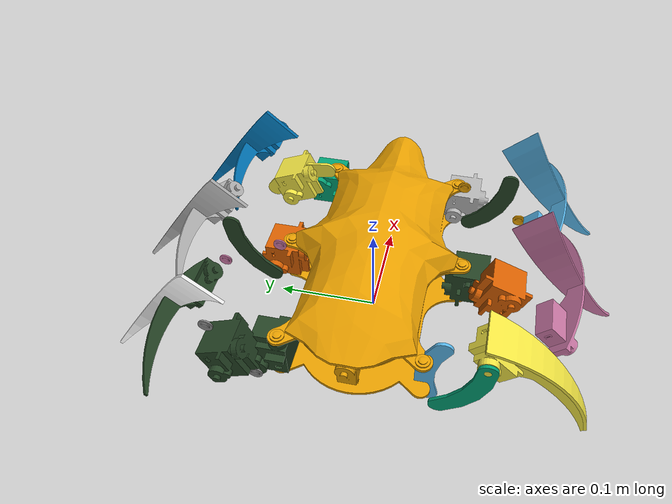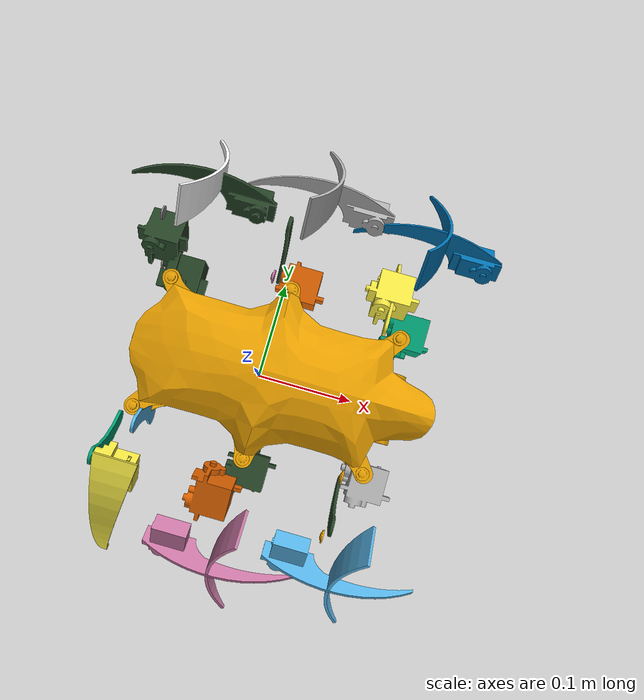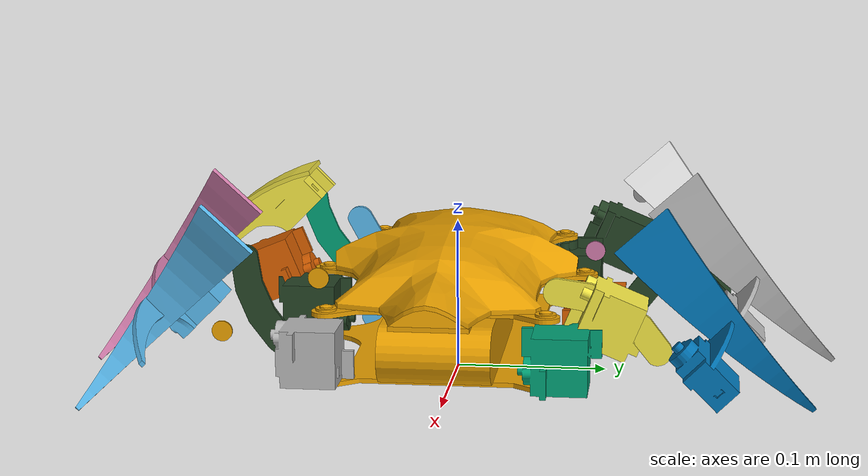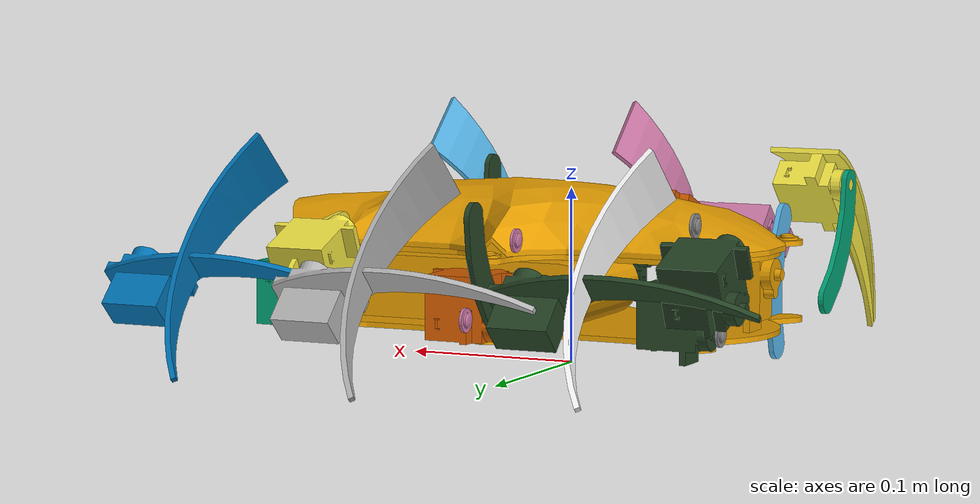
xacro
<?xml version="1.0"?>
<robot xmlns:xacro="http://www.ros.org/wiki/xacro" name="ant_robot">
    <link name="robot_base">
        <inertial>
            <origin rpy="-3.141593 3.141593 -3.141593" xyz="0.000000 0.000000 0.046800" />
            <inertia izz="0.010957344003465" iyy="0.0094274309535225" ixz="0.0" ixy="0.0" ixx="0.0022800739177674" iyz="0.0" />
            <mass value="0.5" />
        </inertial>
        <collision name="Ant">
            <origin xyz="0.000000 0.000000 0.046800" rpy="-3.141593 3.141593 -3.141593" />
            <geometry>
                <box size="0.245635 0.112682 0.050000" />
            </geometry>
        </collision>
        <visual name="bodyTextured">
            <origin xyz="0.025649 -0.000000 0.063289" rpy="1.570796 3.141593 -3.141593" />
            <geometry>
                <mesh filename="package://ant_description/meshes/stl/ant_bodyTextured_vis_1.stl" />
            </geometry>
        </visual>
        <visual name="body">
            <origin xyz="0.016722 -0.000000 0.048790" rpy="1.570796 3.141593 -3.141593" />
            <geometry>
                <mesh filename="package://ant_description/meshes/stl/ant_body_vis_1.stl" />
            </geometry>
        </visual>
        <visual name="body">
            <origin xyz="0.016722 -0.000000 0.048790" rpy="1.570796 3.141593 -3.141593" />
            <geometry>
                <mesh filename="package://ant_description/meshes/stl/ant_body_vis_2.stl" />
            </geometry>
        </visual>
    </link>

    <joint type="continuous" name="joint1Leg">
        <axis xyz="0 0 1" />
        <parent link="robot_base" />
        <child link="link1RespondableLeg" />
        <origin xyz="-0.105981 -0.065481 0.052616" rpy="-3.141593 3.141593 -3.141593" />
    </joint>
    <link name="link1RespondableLeg">
        <inertial>
            <origin rpy="-1.570796 -1.570796 0.000000" xyz="0.008250 -0.009000 -0.010575" />
            <inertia izz="0.00031086051841823" iyy="0.00032467001214758" ixz="0.0" ixy="0.0" ixx="0.00032467001214758" iyz="0.0" />
            <mass value="0.10000000149012" />
        </inertial>
        <collision name="link1RespondableLeg">
            <origin xyz="0.008250 -0.009000 -0.010575" rpy="-1.570796 -1.570796 0.000000" />
            <geometry>
                <box size="0.034500 0.034500 0.036000" />
            </geometry>
        </collision>
        <visual name="link1Leg">
            <origin xyz="0.007125 -0.009000 -0.009450" rpy="1.570796 3.141593 3.141592" />
            <geometry>
                <mesh filename="package://ant_description/meshes/stl/ant_link1Leg_vis_1.stl" />
            </geometry>
        </visual>
    </link>
    <joint type="continuous" name="joint2Leg">
        <axis xyz="0 0 1" />
        <parent link="link1RespondableLeg" />
        <child link="link2RespondableLeg" />
        <origin xyz="-0.005325 -0.018000 -0.018825" rpy="0.000000 1.570796 0.000000" />
    </joint>
    <link name="link2RespondableLeg">
        <inertial>
            <origin rpy="2.660233 1.570800 -0.350445" xyz="-0.029710 -0.022557 -0.011925" />
            <inertia izz="6.393814813824e-05" iyy="0.00027021820578771" ixz="0.0" ixy="0.0" ixx="0.00033342523110201" iyz="-0.00010482141909481" />
            <mass value="0.10000000149012" />
        </inertial>
        <collision name="link2RespondableLeg">
            <origin xyz="-0.019013 -0.020420 -0.011925" rpy="2.920760 1.570808 0.425105" />
            <geometry>
                <box size="0.003000 0.018521 0.021172" />
            </geometry>
        </collision>
        <collision name="link2RespondableLeg">
            <origin xyz="-0.056947 -0.035393 -0.011925" rpy="2.745173 1.570801 -0.265505" />
            <geometry>
                <box size="0.003000 0.017720 0.028921" />
            </geometry>
        </collision>
        <collision name="link2RespondableLeg">
            <origin xyz="-0.035254 -0.029795 -0.011925" rpy="-1.791009 1.570800 1.751686" />
            <geometry>
                <box size="0.003000 0.018520 0.021172" />
            </geometry>
        </collision>
        <collision name="link2RespondableLeg">
            <origin xyz="-0.001888 -0.002565 -0.011925" rpy="-0.379799 4.712386 -1.845555" />
            <geometry>
                <box size="0.003000 0.017720 0.024215" />
            </geometry>
        </collision>
        <visual name="link2Leg">
            <origin xyz="-0.030290 -0.020277 -0.013500" rpy="5.460268 4.712386 2.786413" />
            <geometry>
                <mesh filename="package://ant_description/meshes/stl/ant_link2Leg_vis_1.stl" />
            </geometry>
        </visual>
        <visual name="link2Leg">
            <origin xyz="-0.030290 -0.020277 -0.013500" rpy="5.460268 4.712386 2.786413" />
            <geometry>
                <mesh filename="package://ant_description/meshes/stl/ant_link2Leg_vis_2.stl" />
            </geometry>

        </visual>
    </link>
    <joint type="continuous" name="joint3Leg">
        <axis xyz="0 0 1" />
        <parent link="link2RespondableLeg" />
        <child link="link3RespondableLeg" />
        <origin xyz="-0.062445 -0.036053 -0.000000" rpy="-3.141593 3.141593 3.141593" />
    </joint>
    <link name="link3RespondableLeg">
        <inertial>
            <origin rpy="1.570793 3.141553 0.785400" xyz="0.011957 -0.025711 0.012489" />
            <inertia izz="0.00013074937612539" iyy="0.00077178773464798" ixz="-0.00010540263583867" ixy="-5.6388126685043e-06" ixx="0.00074352314633031" iyz="-3.4289884804401e-05" />
            <mass value="0.10000000149012" />
        </inertial>
        <collision name="link3RespondableLeg">
            <origin xyz="0.005834 -0.005833 0.013575" rpy="-0.000005 3.141553 0.785401" />
            <geometry>
                <box size="0.018001 0.034500 0.034501" />
            </geometry>
        </collision>
        <collision name="link3RespondableLeg">
            <origin xyz="0.092836 -0.094363 0.007575" rpy="0.000000 -1.570796 0.000000" />
            <geometry>
                <sphere radius="0.0032986958976835" />
            </geometry>
        </collision>
        <collision name="link3RespondableLeg">
            <origin xyz="0.036252 -0.061335 0.007575" rpy="0.257603 1.570798 -0.523808" />
            <geometry>
                <box size="0.003000 0.014297 0.045614" />
            </geometry>
        </collision>
        <collision name="link3RespondableLeg">
            <origin xyz="0.063260 -0.081455 0.007575" rpy="-1.690475 1.570798 -2.283960" />
            <geometry>
                <box size="0.003000 0.008814 0.033864" />
            </geometry>
        </collision>
        <collision name="link3RespondableLeg">
            <origin xyz="0.084686 -0.092215 0.007575" rpy="-0.484079 4.712386 -0.007227" />
            <geometry>
                <box size="0.003000 0.006051 0.020069" />
            </geometry>
        </collision>
        <collision name="link3RespondableLeg">
            <origin xyz="0.087416 -0.096363 0.008029" rpy="1.545887 3.129137 1.305299" />
            <geometry>
                <box size="0.003655 0.004545 0.013340" />
            </geometry>
        </collision>
        <collision name="link3RespondableLeg">
            <origin xyz="-0.014900 -0.007731 0.013873" rpy="3.141539 3.140318 0.371811" />
            <geometry>
                <box size="0.003691 0.026863 0.042602" />
            </geometry>
        </collision>
        <collision name="link3RespondableLeg">
            <origin xyz="-0.002956 -0.031559 0.012838" rpy="3.137916 3.136896 0.557971" />
            <geometry>
                <box size="0.003657 0.027284 0.036439" />
            </geometry>
        </collision>
        <collision name="link3RespondableLeg">
            <origin xyz="0.013484 -0.052977 0.011759" rpy="-0.004168 3.133073 0.726839" />
            <geometry>
                <box size="0.003851 0.027417 0.029724" />
            </geometry>
        </collision>
        <collision name="link3RespondableLeg">
            <origin xyz="0.033433 -0.071185 0.010650" rpy="-1.574061 3.130262 0.926689" />
            <geometry>
                <box size="0.003639 0.022731 0.027357" />
            </geometry>
        </collision>
        <collision name="link3RespondableLeg">
            <origin xyz="0.056339 -0.085261 0.009553" rpy="1.568772 3.128522 1.112589" />
            <geometry>
                <box size="0.003639 0.015754 0.027118" />
            </geometry>
        </collision>
        <collision name="link3RespondableLeg">
            <origin xyz="0.074295 -0.092800 0.008367" rpy="1.545887 3.129137 1.305299" />
            <geometry>
                <box size="0.003655 0.009090 0.013340" />
            </geometry>
        </collision>
        <visual name="link3Leg">
            <origin xyz="0.035561 -0.048040 0.008700" rpy="0 3.141591 0.785395" />
            <geometry>
                <mesh filename="package://ant_description/meshes/stl/ant_link3Leg_vis_1.stl" />
            </geometry>
        </visual>
        <visual name="linkTexturedPart3Leg">
            <origin xyz="0.029826 -0.054643 0.013853" rpy="3.144038 3.141673 2.404862" />
            <geometry>
                <mesh filename="package://ant_description/meshes/stl/ant_linkTexturedPart3Leg_vis_1.stl" />
            </geometry>

        </visual>
    </link>
    <joint type="continuous" name="joint1Leg_2">
        <axis xyz="0 0 1" />
        <parent link="robot_base" />
        <child link="link1RespondableLeg_2" />
        <origin xyz="0.010884 -0.085773 0.052616" rpy="-3.141593 3.141593 -3.141593" />
    </joint>
    <link name="link1RespondableLeg_2">
        <inertial>
            <origin rpy="-1.570796 -1.570796 0.000000" xyz="0.008250 -0.009000 -0.010575" />
            <inertia izz="0.00031086051841823" iyy="0.00032467001214758" ixz="0.0" ixy="0.0" ixx="0.00032467001214758" iyz="0.0" />
            <mass value="0.10000000149012" />
        </inertial>
        <collision name="link1RespondableLeg">
            <origin xyz="0.008250 -0.009000 -0.010575" rpy="-1.570796 -1.570796 0.000000" />
            <geometry>
                <box size="0.034500 0.034500 0.036000" />
            </geometry>
        </collision>
        <visual name="link1Leg">
            <origin xyz="0.007125 -0.009000 -0.009450" rpy="1.570796 3.141593 3.141592" />
            <geometry>
                <mesh filename="package://ant_description/meshes/stl/ant_link1Leg_2_vis_1.stl" />
            </geometry>
        </visual>
    </link>
    <joint type="continuous" name="joint2Leg_2">
        <axis xyz="0 0 1" />
        <parent link="link1RespondableLeg_2" />
        <child link="link2RespondableLeg_2" />
        <origin xyz="-0.005325 -0.018000 -0.018825" rpy="0.000000 1.570796 0.000000" />
    </joint>
    <link name="link2RespondableLeg_2">
        <inertial>
            <origin rpy="2.660233 1.570800 -0.350445" xyz="-0.029710 -0.022557 -0.011925" />
            <inertia izz="6.393814813824e-05" iyy="0.00027021820578771" ixz="0.0" ixy="0.0" ixx="0.00033342523110201" iyz="-0.00010482141909481" />
            <mass value="0.10000000149012" />
        </inertial>
        <collision name="link2RespondableLeg">
            <origin xyz="-0.019013 -0.020420 -0.011925" rpy="2.920760 1.570808 0.425105" />
            <geometry>
                <box size="0.003000 0.018521 0.021172" />
            </geometry>
        </collision>
        <collision name="link2RespondableLeg">
            <origin xyz="-0.056947 -0.035393 -0.011925" rpy="2.745173 1.570801 -0.265505" />
            <geometry>
                <box size="0.003000 0.017720 0.028921" />
            </geometry>
        </collision>
        <collision name="link2RespondableLeg">
            <origin xyz="-0.035254 -0.029795 -0.011925" rpy="-1.791009 1.570800 1.751686" />
            <geometry>
                <box size="0.003000 0.018520 0.021172" />
            </geometry>
        </collision>
        <collision name="link2RespondableLeg">
            <origin xyz="-0.001888 -0.002565 -0.011925" rpy="-0.379799 4.712386 -1.845555" />
            <geometry>
                <box size="0.003000 0.017720 0.024215" />
            </geometry>
        </collision>
        <visual name="link2Leg">
            <origin xyz="-0.030290 -0.020277 -0.013500" rpy="0.747880 4.712386 2.786413" />
            <geometry>
                <mesh filename="package://ant_description/meshes/stl/ant_link2Leg_2_vis_1.stl" />
            </geometry>
        </visual>
        <visual name="link2Leg">
            <origin xyz="-0.030290 -0.020277 -0.013500" rpy="0.747880 4.712386 2.786413" />
            <geometry>
                <mesh filename="package://ant_description/meshes/stl/ant_link2Leg_2_vis_2.stl" />
            </geometry>
        </visual>
    </link>
    <joint type="continuous" name="joint3Leg_2">
        <axis xyz="0 0 1" />
        <parent link="link2RespondableLeg_2" />
        <child link="link3RespondableLeg_2" />
        <origin xyz="-0.062445 -0.036053 -0.000000" rpy="-3.141593 3.141593 3.141593" />
    </joint>
    <link name="link3RespondableLeg_2">
        <inertial>
            <origin rpy="1.570793 3.141553 0.785400" xyz="0.011957 -0.025711 0.012489" />
            <inertia izz="0.00013074937612539" iyy="0.00077178773464798" ixz="-0.00010540263583867" ixy="-5.6388126685043e-06" ixx="0.00074352314633031" iyz="-3.4289884804401e-05" />
            <mass value="0.10000000149012" />
        </inertial>
        <collision name="link3RespondableLeg">
            <origin xyz="0.005834 -0.005833 0.013575" rpy="-0.000005 3.141553 0.785401" />
            <geometry>
                <box size="0.018001 0.034500 0.034501" />
            </geometry>
        </collision>
        <collision name="link3RespondableLeg">
            <origin xyz="0.092836 -0.094363 0.007575" rpy="0.000000 -1.570796 0.000000" />
            <geometry>
                <sphere radius="0.0032986958976835" />
            </geometry>
        </collision>
        <collision name="link3RespondableLeg">
            <origin xyz="0.036252 -0.061335 0.007575" rpy="0.257603 1.570798 -0.523808" />
            <geometry>
                <box size="0.003000 0.014297 0.045614" />
            </geometry>
        </collision>
        <collision name="link3RespondableLeg">
            <origin xyz="0.063260 -0.081455 0.007575" rpy="-1.690475 1.570798 -2.283960" />
            <geometry>
                <box size="0.003000 0.008814 0.033864" />
            </geometry>
        </collision>
        <collision name="link3RespondableLeg">
            <origin xyz="0.084686 -0.092215 0.007575" rpy="-0.484079 4.712386 -0.007227" />
            <geometry>
                <box size="0.003000 0.006051 0.020069" />
            </geometry>
        </collision>
        <collision name="link3RespondableLeg">
            <origin xyz="0.087416 -0.096363 0.008029" rpy="1.545887 3.129137 1.305299" />
            <geometry>
                <box size="0.003655 0.004545 0.013340" />
            </geometry>
        </collision>
        <collision name="link3RespondableLeg">
            <origin xyz="-0.014900 -0.007731 0.013873" rpy="3.141539 3.140318 0.371811" />
            <geometry>
                <box size="0.003691 0.026863 0.042602" />
            </geometry>
        </collision>
        <collision name="link3RespondableLeg">
            <origin xyz="-0.002956 -0.031559 0.012838" rpy="3.137916 3.136896 0.557971" />
            <geometry>
                <box size="0.003657 0.027284 0.036439" />
            </geometry>
        </collision>
        <collision name="link3RespondableLeg">
            <origin xyz="0.013484 -0.052977 0.011759" rpy="-0.004168 3.133073 0.726839" />
            <geometry>
                <box size="0.003851 0.027417 0.029724" />
            </geometry>
        </collision>
        <collision name="link3RespondableLeg">
            <origin xyz="0.033433 -0.071185 0.010650" rpy="-1.574061 3.130262 0.926689" />
            <geometry>
                <box size="0.003639 0.022731 0.027357" />
            </geometry>
        </collision>
        <collision name="link3RespondableLeg">
            <origin xyz="0.056339 -0.085261 0.009553" rpy="1.568772 3.128522 1.112589" />
            <geometry>
                <box size="0.003639 0.015754 0.027118" />
            </geometry>
        </collision>
        <collision name="link3RespondableLeg">
            <origin xyz="0.074295 -0.092800 0.008367" rpy="1.545887 3.129137 1.305299" />
            <geometry>
                <box size="0.003655 0.009090 0.013340" />
            </geometry>
        </collision>
        <visual name="link3Leg">
            <origin xyz="0.035561 -0.048040 0.008700" rpy="1.570796 3.141591 0.785395" />
            <geometry>
                <mesh filename="package://ant_description/meshes/stl/ant_link3Leg_2_vis_1.stl" />
            </geometry>
        </visual>
        <visual name="linkTexturedPart3Leg">
            <origin xyz="0.029826 -0.054642 0.013853" rpy="-1.568350 3.141673 2.404862" />
            <geometry>
                <mesh filename="package://ant_description/meshes/stl/ant_linkTexturedPart3Leg_2_vis_1.stl" />
            </geometry>
        </visual>
    </link>
    <joint type="continuous" name="joint1Leg_3">
        <axis xyz="0 0 1" />
        <parent link="robot_base" />
        <child link="link1RespondableLeg_3" />
        <origin xyz="0.126175 -0.068180 0.052616" rpy="-3.141593 3.141593 -3.141593" />
    </joint>
    <link name="link1RespondableLeg_3">
        <inertial>
            <origin rpy="-1.570796 -1.570796 0.000000" xyz="0.008250 -0.009000 -0.010575" />
            <inertia izz="0.00031086051841823" iyy="0.00032467001214758" ixz="0.0" ixy="0.0" ixx="0.00032467001214758" iyz="0.0" />
            <mass value="0.10000000149012" />
        </inertial>
        <collision name="link1RespondableLeg">
            <origin xyz="0.008250 -0.009000 -0.010575" rpy="-1.570796 -1.570796 0.000000" />
            <geometry>
                <box size="0.034500 0.034500 0.036000" />
            </geometry>
        </collision>
        <visual name="link1Leg">
            <origin xyz="0.007125 -0.009000 -0.009450" rpy="-3.141593 3.141593 3.141592" />
            <geometry>
                <mesh filename="package://ant_description/meshes/stl/ant_link1Leg_3_vis_1.stl" />
            </geometry>
        </visual>
    </link>
    <joint type="continuous" name="joint2Leg_3">
        <axis xyz="0 0 1" />
        <parent link="link1RespondableLeg_3" />
        <child link="link2RespondableLeg_3" />
        <origin xyz="-0.005325 -0.018000 -0.018825" rpy="0.000000 1.570796 0.000000" />
    </joint>
    <link name="link2RespondableLeg_3">
        <inertial>
            <origin rpy="2.660233 1.570800 -0.350445" xyz="-0.029710 -0.022557 -0.011925" />
            <inertia izz="6.393814813824e-05" iyy="0.00027021820578771" ixz="0.0" ixy="0.0" ixx="0.00033342523110201" iyz="-0.00010482141909481" />
            <mass value="0.10000000149012" />
        </inertial>
        <collision name="link2RespondableLeg">
            <origin xyz="-0.019013 -0.020420 -0.011925" rpy="2.920760 1.570808 0.425105" />
            <geometry>
                <box size="0.003000 0.018521 0.021172" />
            </geometry>
        </collision>
        <collision name="link2RespondableLeg">
            <origin xyz="-0.056947 -0.035393 -0.011925" rpy="2.745173 1.570801 -0.265505" />
            <geometry>
                <box size="0.003000 0.017720 0.028921" />
            </geometry>
        </collision>
        <collision name="link2RespondableLeg">
            <origin xyz="-0.035254 -0.029795 -0.011925" rpy="-1.791009 1.570800 1.751686" />
            <geometry>
                <box size="0.003000 0.018520 0.021172" />
            </geometry>
        </collision>
        <collision name="link2RespondableLeg">
            <origin xyz="-0.001888 -0.002565 -0.011925" rpy="-0.379799 4.712386 -1.845555" />
            <geometry>
                <box size="0.003000 0.017720 0.024215" />
            </geometry>
        </collision>
        <visual name="link2Leg">
            <origin xyz="-0.030290 -0.020277 -0.013500" rpy="0.747880 4.712386 2.786413" />
            <geometry>
                <mesh filename="package://ant_description/meshes/stl/ant_link2Leg_3_vis_1.stl" />
            </geometry>
        </visual>
        <visual name="link2Leg">
            <origin xyz="-0.030290 -0.020277 -0.013500" rpy="0.747880 4.712386 2.786413" />
            <geometry>
                <mesh filename="package://ant_description/meshes/stl/ant_link2Leg_3_vis_2.stl" />
            </geometry>
        </visual>
    </link>
    <joint type="continuous" name="joint3Leg_3">
        <axis xyz="0 0 1" />
        <parent link="link2RespondableLeg_3" />
        <child link="link3RespondableLeg_3" />
        <origin xyz="-0.062445 -0.036053 -0.000000" rpy="-3.141593 3.141593 3.141593" />
    </joint>
    <link name="link3RespondableLeg_3">
        <inertial>
            <origin rpy="1.570793 3.141553 0.785400" xyz="0.011957 -0.025711 0.012489" />
            <inertia izz="0.00013074937612539" iyy="0.00077178773464798" ixz="-0.00010540263583867" ixy="-5.6388126685043e-06" ixx="0.00074352314633031" iyz="-3.4289884804401e-05" />
            <mass value="0.10000000149012" />
        </inertial>
        <collision name="link3RespondableLeg">
            <origin xyz="0.005834 -0.005833 0.013575" rpy="-0.000005 3.141553 0.785401" />
            <geometry>
                <box size="0.018001 0.034500 0.034501" />
            </geometry>
        </collision>
        <collision name="link3RespondableLeg">
            <origin xyz="0.092836 -0.094363 0.007575" rpy="0.000000 -1.570796 0.000000" />
            <geometry>
                <sphere radius="0.0032986958976835" />
            </geometry>
        </collision>
        <collision name="link3RespondableLeg">
            <origin xyz="0.036252 -0.061335 0.007575" rpy="0.257603 1.570798 -0.523808" />
            <geometry>
                <box size="0.003000 0.014297 0.045614" />
            </geometry>
        </collision>
        <collision name="link3RespondableLeg">
            <origin xyz="0.063260 -0.081455 0.007575" rpy="-1.690475 1.570798 -2.283960" />
            <geometry>
                <box size="0.003000 0.008814 0.033864" />
            </geometry>
        </collision>
        <collision name="link3RespondableLeg">
            <origin xyz="0.084686 -0.092215 0.007575" rpy="-0.484079 4.712386 -0.007227" />
            <geometry>
                <box size="0.003000 0.006051 0.020069" />
            </geometry>
        </collision>
        <collision name="link3RespondableLeg">
            <origin xyz="0.087416 -0.096363 0.008029" rpy="1.545887 3.129137 1.305299" />
            <geometry>
                <box size="0.003655 0.004545 0.013340" />
            </geometry>
        </collision>
        <collision name="link3RespondableLeg">
            <origin xyz="-0.014900 -0.007731 0.013873" rpy="3.141539 3.140318 0.371811" />
            <geometry>
                <box size="0.003691 0.026863 0.042602" />
            </geometry>
        </collision>
        <collision name="link3RespondableLeg">
            <origin xyz="-0.002956 -0.031559 0.012838" rpy="3.137916 3.136896 0.557971" />
            <geometry>
                <box size="0.003657 0.027284 0.036439" />
            </geometry>
        </collision>
        <collision name="link3RespondableLeg">
            <origin xyz="0.013484 -0.052977 0.011759" rpy="-0.004168 3.133073 0.726839" />
            <geometry>
                <box size="0.003851 0.027417 0.029724" />
            </geometry>
        </collision>
        <collision name="link3RespondableLeg">
            <origin xyz="0.033433 -0.071185 0.010650" rpy="-1.574061 3.130262 0.926689" />
            <geometry>
                <box size="0.003639 0.022731 0.027357" />
            </geometry>
        </collision>
        <collision name="link3RespondableLeg">
            <origin xyz="0.056339 -0.085261 0.009553" rpy="1.568772 3.128522 1.112589" />
            <geometry>
                <box size="0.003639 0.015754 0.027118" />
            </geometry>
        </collision>
        <collision name="link3RespondableLeg">
            <origin xyz="0.074295 -0.092800 0.008367" rpy="1.545887 3.129137 1.305299" />
            <geometry>
                <box size="0.003655 0.009090 0.013340" />
            </geometry>
        </collision>
        <visual name="link3Leg">
            <origin xyz="0.035561 -0.048040 0.008700" rpy="1.570799 3.141591 0.785395" />
            <geometry>
                <mesh filename="package://ant_description/meshes/stl/ant_link3Leg_3_vis_1.stl" />
            </geometry>
        </visual>
        <visual name="linkTexturedPart3Leg">
            <origin xyz="0.029826 -0.054643 0.013853" rpy="-1.568350 3.141673 2.404862" />
            <geometry>
                <mesh filename="package://ant_description/meshes/stl/ant_linkTexturedPart3Leg_3_vis_1.stl" />
            </geometry>
        </visual>
    </link>
    <joint type="continuous" name="joint1Leg_4">
        <axis xyz="0 0 1" />
        <parent link="robot_base" />
        <child link="link1RespondableLeg_4" />
        <origin xyz="0.126175 0.068180 0.052616" rpy="-3.141593 3.141593 -3.141593" />
    </joint>
    <link name="link1RespondableLeg_4">
        <inertial>
            <origin rpy="-1.570796 -1.570796 0.000000" xyz="0.008250 0.009000 -0.010575" />
            <inertia izz="0.00031086051841823" iyy="0.00032467001214758" ixz="0.0" ixy="0.0" ixx="0.00032467001214758" iyz="0.0" />
            <mass value="0.10000000149012" />
        </inertial>
        <collision name="link1RespondableLeg">
            <origin xyz="0.008250 0.009000 -0.010575" rpy="-1.570796 -1.570796 0.000000" />
            <geometry>
                <box size="0.034500 0.034500 0.036000" />
            </geometry>
        </collision>
        <visual name="link1Leg">
            <origin xyz="0.007125 0.008980 -0.009450" rpy="-3.141593 3.141593 -3.141593" />
            <geometry>
                <mesh filename="package://ant_description/meshes/stl/ant_link1Leg_4_vis_1.stl" />
            </geometry>
        </visual>
    </link>
    <joint type="continuous" name="joint2Leg_4">
        <axis xyz="0 0 1" />
        <parent link="link1RespondableLeg_4" />
        <child link="link2RespondableLeg_4" />
        <origin xyz="-0.005325 0.018000 -0.018825" rpy="0.000000 1.570796 0.000000" />
    </joint>
    <link name="link2RespondableLeg_4">
        <inertial>
            <origin rpy="-0.462613 4.712385 0.331699" xyz="-0.029710 0.022538 -0.011925" />
            <inertia izz="6.393814813824e-05" iyy="0.00027021820578771" ixz="0.0" ixy="0.0" ixx="0.00033342523110201" iyz="-0.00010482141909481" />
            <mass value="0.10000000149012" />
        </inertial>
        <collision name="link2RespondableLeg">
            <origin xyz="-0.019013 0.020401 -0.011925" rpy="-0.213902 4.712378 -0.432035" />
            <geometry>
                <box size="0.003000 0.018521 0.021172" />
            </geometry>
        </collision>
        <collision name="link2RespondableLeg">
            <origin xyz="-0.056947 0.035374 -0.011925" rpy="-0.379596 4.712384 0.248682" />
            <geometry>
                <box size="0.003000 0.017720 0.028921" />
            </geometry>
        </collision>
        <collision name="link2RespondableLeg">
            <origin xyz="-0.035254 0.029776 -0.011925" rpy="1.348269 4.712385 -1.749372" />
            <geometry>
                <box size="0.003000 0.018520 0.021172" />
            </geometry>
        </collision>
        <collision name="link2RespondableLeg">
            <origin xyz="-0.001888 0.002546 -0.011925" rpy="2.752481 1.570799 1.836242" />
            <geometry>
                <box size="0.003000 0.017720 0.024215" />
            </geometry>
        </collision>
        <visual name="link2Leg">
            <origin xyz="-0.030290 0.020258 -0.013500" rpy="-1.458323 4.712377 1.065623" />
            <geometry>
                <mesh filename="package://ant_description/meshes/stl/ant_link2Leg_4_vis_1.stl" />
            </geometry>
        </visual>
        <visual name="link2Leg">
            <origin xyz="-0.030290 0.020258 -0.013500" rpy="-1.458323 4.712377 1.065623" />
            <geometry>
                <mesh filename="package://ant_description/meshes/stl/ant_link2Leg_4_vis_2.stl" />
            </geometry>
        </visual>
    </link>
    <joint type="continuous" name="joint3Leg_4">
        <axis xyz="0 0 1" />
        <parent link="link2RespondableLeg_4" />
        <child link="link3RespondableLeg_4" />
        <origin xyz="-0.062445 0.036000 -0.000000" rpy="-3.141593 3.141593 -3.141593" />
    </joint>
    <link name="link3RespondableLeg_4">
        <inertial>
            <origin rpy="1.925641 1.590354 -0.372378" xyz="0.012346 0.026715 0.012683" />
            <inertia izz="0.00012109677875492" iyy="0.00076570937949614" ixz="3.3916218396018e-05" ixy="5.8585982618329e-06" ixx="0.00078497914216915" iyz="-7.1666598743321e-05" />
            <mass value="0.1011593863368" />
        </inertial>
        <collision name="link3RespondableLeg">
            <origin xyz="0.005834 0.005867 0.014131" rpy="3.141588 3.141632 -0.785401" />
            <geometry>
                <box size="0.018001 0.034500 0.034501" />
            </geometry>
        </collision>
        <collision name="link3RespondableLeg">
            <origin xyz="-0.014900 0.007763 0.013873" rpy="0.000054 3.140318 -0.371812" />
            <geometry>
                <box size="0.003691 0.026863 0.042602" />
            </geometry>
        </collision>
        <collision name="link3RespondableLeg">
            <origin xyz="-0.002956 0.031592 0.012838" rpy="0.003677 3.136896 -0.557972" />
            <geometry>
                <box size="0.003657 0.027284 0.036439" />
            </geometry>
        </collision>
        <collision name="link3RespondableLeg">
            <origin xyz="0.013302 0.052467 0.010652" rpy="1.570796 3.134547 -0.699088" />
            <geometry>
                <box size="0.004271 0.029345 0.031401" />
            </geometry>
        </collision>
        <collision name="link3RespondableLeg">
            <origin xyz="0.033434 0.071218 0.010652" rpy="-1.567634 3.130229 -0.926383" />
            <geometry>
                <box size="0.003641 0.022731 0.027357" />
            </geometry>
        </collision>
        <collision name="link3RespondableLeg">
            <origin xyz="0.056084 0.084772 0.010652" rpy="1.570796 3.128530 -1.068370" />
            <geometry>
                <box size="0.004251 0.015604 0.028885" />
            </geometry>
        </collision>
        <collision name="link3RespondableLeg">
            <origin xyz="0.092836 0.094397 0.007775" rpy="-3.141593 1.570796 0.000000" />
            <geometry>
                <sphere radius="0.0032986958976835" />
            </geometry>
        </collision>
        <collision name="link3RespondableLeg">
            <origin xyz="0.036252 0.061369 0.007575" rpy="-2.886476 4.712387 0.526294" />
            <geometry>
                <box size="0.003000 0.014297 0.045614" />
            </geometry>
        </collision>
        <collision name="link3RespondableLeg">
            <origin xyz="0.063260 0.081489 0.007575" rpy="1.434171 4.712387 2.300906" />
            <geometry>
                <box size="0.003000 0.008814 0.033864" />
            </geometry>
        </collision>
        <collision name="link3RespondableLeg">
            <origin xyz="0.084686 0.092249 0.007575" rpy="2.678725 1.570799 0.028439" />
            <geometry>
                <box size="0.003000 0.006051 0.020069" />
            </geometry>
        </collision>
        <collision name="link3RespondableLeg">
            <origin xyz="0.087416 0.096397 0.007775" rpy="-1.595705 3.154048 -1.305299" />
            <geometry>
                <box size="0.003655 0.004545 0.013340" />
            </geometry>
        </collision>
        <collision name="link3RespondableLeg">
            <origin xyz="0.074295 0.092834 0.008475" rpy="-1.595705 3.154048 -1.305300" />
            <geometry>
                <box size="0.003655 0.009090 0.013340" />
            </geometry>
        </collision>
        <visual name="link3Leg">
            <origin xyz="0.035561 0.048074 0.008700" rpy="1.570795 3.141598 -0.785395" />
            <geometry>
                <mesh filename="package://ant_description/meshes/stl/ant_link3Leg_4_vis_1.stl" />
            </geometry>
        </visual>
        <visual name="linkTexturedPart3Leg">
            <origin xyz="0.029810 0.054686 0.013955" rpy="1.572101 3.142443 -2.405235" />
            <geometry>
                <mesh filename="package://ant_description/meshes/stl/ant_linkTexturedPart3Leg_4_vis_1.stl" />
            </geometry>
        </visual>
    </link>
    <joint type="continuous" name="joint1Leg_5">
        <axis xyz="0 0 1" />
        <parent link="robot_base" />
        <child link="link1RespondableLeg_5" />
        <origin xyz="0.010884 0.085753 0.052616" rpy="-3.141593 3.141593 -3.141593" />
    </joint>
    <link name="link1RespondableLeg_5">
        <inertial>
            <origin rpy="-1.570796 -1.570796 0.000000" xyz="0.008250 0.009000 -0.010575" />
            <inertia izz="0.00031086051841823" iyy="0.00032467001214758" ixz="0.0" ixy="0.0" ixx="0.00032467001214758" iyz="0.0" />
            <mass value="0.10000000149012" />
        </inertial>
        <collision name="link1RespondableLeg">
            <origin xyz="0.008250 0.009000 -0.010575" rpy="-1.570796 -1.570796 0.000000" />
            <geometry>
                <box size="0.034500 0.034500 0.036000" />
            </geometry>
        </collision>
        <visual name="link1Leg">
            <origin xyz="0.007125 0.008980 -0.009450" rpy="-3.141593 3.141593 -3.141593" />
            <geometry>
                <mesh filename="package://ant_description/meshes/stl/ant_link1Leg_5_vis_1.stl" />
            </geometry>
        </visual>
    </link>
    <joint type="continuous" name="joint2Leg_5">
        <axis xyz="0 0 1" />
        <parent link="link1RespondableLeg_5" />
        <child link="link2RespondableLeg_5" />
        <origin xyz="-0.005325 0.018000 -0.018825" rpy="0.000000 1.570796 0.000000" />
    </joint>
    <link name="link2RespondableLeg_5">
        <inertial>
            <origin rpy="-0.462613 4.712385 0.331699" xyz="-0.029710 0.022538 -0.011925" />
            <inertia izz="6.393814813824e-05" iyy="0.00027021820578771" ixz="0.0" ixy="0.0" ixx="0.00033342523110201" iyz="-0.00010482141909481" />
            <mass value="0.10000000149012" />
        </inertial>
        <collision name="link2RespondableLeg">
            <origin xyz="-0.019013 0.020401 -0.011925" rpy="-0.213902 4.712378 -0.432035" />
            <geometry>
                <box size="0.003000 0.018521 0.021172" />
            </geometry>
        </collision>
        <collision name="link2RespondableLeg">
            <origin xyz="-0.056947 0.035374 -0.011925" rpy="-0.379596 4.712384 0.248682" />
            <geometry>
                <box size="0.003000 0.017720 0.028921" />
            </geometry>
        </collision>
        <collision name="link2RespondableLeg">
            <origin xyz="-0.035254 0.029776 -0.011925" rpy="1.348269 4.712385 -1.749372" />
            <geometry>
                <box size="0.003000 0.018520 0.021172" />
            </geometry>
        </collision>
        <collision name="link2RespondableLeg">
            <origin xyz="-0.001888 0.002546 -0.011925" rpy="2.752481 1.570799 1.836242" />
            <geometry>
                <box size="0.003000 0.017720 0.024215" />
            </geometry>
        </collision>
        <visual name="link2Leg">
            <origin xyz="-0.030290 0.020258 -0.013500" rpy="-1.458323 4.712377 1.065623" />
            <geometry>
                <mesh filename="package://ant_description/meshes/stl/ant_link2Leg_5_vis_1.stl" />
            </geometry>
        </visual>
        <visual name="link2Leg">
            <origin xyz="-0.030290 0.020258 -0.013500" rpy="-1.458323 4.712377 1.065623" />
            <geometry>
                <mesh filename="package://ant_description/meshes/stl/ant_link2Leg_5_vis_2.stl" />
            </geometry>
        </visual>
    </link>
    <joint type="continuous" name="joint3Leg_5">
        <axis xyz="0 0 1" />
        <parent link="link2RespondableLeg_5" />
        <child link="link3RespondableLeg_5" />
        <origin xyz="-0.062445 0.036000 -0.000000" rpy="-3.141593 3.141593 -3.141593" />
    </joint>
    <link name="link3RespondableLeg_5">
        <inertial>
            <origin rpy="1.925641 1.590354 -0.372378" xyz="0.012346 0.026715 0.012683" />
            <inertia izz="0.00012109677875492" iyy="0.00076570937949614" ixz="3.3916218396018e-05" ixy="5.8585982618329e-06" ixx="0.00078497914216915" iyz="-7.1666598743321e-05" />
            <mass value="0.1011593863368" />
        </inertial>
        <collision name="link3RespondableLeg">
            <origin xyz="0.005834 0.005867 0.014131" rpy="3.141588 3.141632 -0.785401" />
            <geometry>
                <box size="0.018001 0.034500 0.034501" />
            </geometry>
        </collision>
        <collision name="link3RespondableLeg">
            <origin xyz="-0.014900 0.007763 0.013873" rpy="0.000054 3.140318 -0.371812" />
            <geometry>
                <box size="0.003691 0.026863 0.042602" />
            </geometry>
        </collision>
        <collision name="link3RespondableLeg">
            <origin xyz="-0.002956 0.031592 0.012838" rpy="0.003677 3.136896 -0.557972" />
            <geometry>
                <box size="0.003657 0.027284 0.036439" />
            </geometry>
        </collision>
        <collision name="link3RespondableLeg">
            <origin xyz="0.013302 0.052467 0.010652" rpy="1.570796 3.134547 -0.699088" />
            <geometry>
                <box size="0.004271 0.029345 0.031401" />
            </geometry>
        </collision>
        <collision name="link3RespondableLeg">
            <origin xyz="0.033434 0.071218 0.010652" rpy="-1.567634 3.130229 -0.926383" />
            <geometry>
                <box size="0.003641 0.022731 0.027357" />
            </geometry>
        </collision>
        <collision name="link3RespondableLeg">
            <origin xyz="0.056084 0.084772 0.010652" rpy="1.570796 3.128530 -1.068370" />
            <geometry>
                <box size="0.004251 0.015604 0.028885" />
            </geometry>
        </collision>
        <collision name="link3RespondableLeg">
            <origin xyz="0.092836 0.094397 0.007775" rpy="-3.141593 1.570796 0.000000" />
            <geometry>
                <sphere radius="0.0032986958976835" />
            </geometry>
        </collision>
        <collision name="link3RespondableLeg">
            <origin xyz="0.036252 0.061369 0.007575" rpy="-2.886476 4.712387 0.526294" />
            <geometry>
                <box size="0.003000 0.014297 0.045614" />
            </geometry>
        </collision>
        <collision name="link3RespondableLeg">
            <origin xyz="0.063260 0.081489 0.007575" rpy="1.434171 4.712387 2.300906" />
            <geometry>
                <box size="0.003000 0.008814 0.033864" />
            </geometry>
        </collision>
        <collision name="link3RespondableLeg">
            <origin xyz="0.084686 0.092249 0.007575" rpy="2.678725 1.570799 0.028439" />
            <geometry>
                <box size="0.003000 0.006051 0.020069" />
            </geometry>
        </collision>
        <collision name="link3RespondableLeg">
            <origin xyz="0.087416 0.096397 0.007775" rpy="-1.595705 3.154048 -1.305299" />
            <geometry>
                <box size="0.003655 0.004545 0.013340" />
            </geometry>
        </collision>
        <collision name="link3RespondableLeg">
            <origin xyz="0.074295 0.092834 0.008475" rpy="-1.595705 3.154048 -1.305300" />
            <geometry>
                <box size="0.003655 0.009090 0.013340" />
            </geometry>
        </collision>
        <visual name="link3Leg">
            <origin xyz="0.035561 0.048074 0.008700" rpy="1.570794 3.141598 -0.785395" />
            <geometry>
                <mesh filename="package://ant_description/meshes/stl/ant_link3Leg_5_vis_1.stl" />
            </geometry>
        </visual>
        <visual name="linkTexturedPart3Leg">
            <origin xyz="0.029809 0.054686 0.013955" rpy="1.572101 3.142443 -2.405235" />
            <geometry>
                <mesh filename="package://ant_description/meshes/stl/ant_linkTexturedPart3Leg_5_vis_1.stl" />
            </geometry>
        </visual>
    </link>
    <joint type="continuous" name="joint1Leg_6">
        <axis xyz="0 0 1" />
        <parent link="robot_base" />
        <child link="link1RespondableLeg_6" />
        <origin xyz="-0.105981 0.065480 0.052616" rpy="-3.141593 3.141593 -3.141593" />
    </joint>
    <link name="link1RespondableLeg_6">
        <inertial>
            <origin rpy="-1.570796 -1.570796 0.000000" xyz="0.008250 0.009000 -0.010575" />
            <inertia izz="0.00031086051841823" iyy="0.00032467001214758" ixz="0.0" ixy="0.0" ixx="0.00032467001214758" iyz="0.0" />
            <mass value="0.10000000149012" />
        </inertial>
        <collision name="link1RespondableLeg">
            <origin xyz="0.008250 0.009000 -0.010575" rpy="-1.570796 -1.570796 0.000000" />
            <geometry>
                <box size="0.034500 0.034500 0.036000" />
            </geometry>
        </collision>
        <visual name="link1Leg">
            <origin xyz="0.007125 0.008980 -0.009450" rpy="-3.141593 3.141593 -3.141593" />
            <geometry>
                <mesh filename="package://ant_description/meshes/stl/ant_link1Leg_6_vis_1.stl" />
            </geometry>
            <material name="link1Leg_6_material">
                <color rgba="0.142118 0.257882 0.142118 1.0" />
            </material>
        </visual>
    </link>
    <joint type="continuous" name="joint2Leg_6">
        <axis xyz="0 0 1" />
        <parent link="link1RespondableLeg_6" />
        <child link="link2RespondableLeg_6" />
        <origin xyz="-0.005325 0.018000 -0.018825" rpy="0.000000 1.570796 0.000000" />
    </joint>
    <link name="link2RespondableLeg_6">
        <inertial>
            <origin rpy="-0.462613 4.712385 0.331699" xyz="-0.029710 0.022538 -0.011925" />
            <inertia izz="6.393814813824e-05" iyy="0.00027021820578771" ixz="0.0" ixy="0.0" ixx="0.00033342523110201" iyz="-0.00010482141909481" />
            <mass value="0.10000000149012" />
        </inertial>
        <collision name="link2RespondableLeg">
            <origin xyz="-0.019013 0.020401 -0.011925" rpy="-0.213902 4.712378 -0.432035" />
            <geometry>
                <box size="0.003000 0.018521 0.021172" />
            </geometry>
        </collision>
        <collision name="link2RespondableLeg">
            <origin xyz="-0.056947 0.035374 -0.011925" rpy="-0.379596 4.712384 0.248682" />
            <geometry>
                <box size="0.003000 0.017720 0.028921" />
            </geometry>
        </collision>
        <collision name="link2RespondableLeg">
            <origin xyz="-0.035254 0.029776 -0.011925" rpy="1.348269 4.712385 -1.749372" />
            <geometry>
                <box size="0.003000 0.018520 0.021172" />
            </geometry>
        </collision>
        <collision name="link2RespondableLeg">
            <origin xyz="-0.001888 0.002546 -0.011925" rpy="2.752481 1.570799 1.836242" />
            <geometry>
                <box size="0.003000 0.017720 0.024215" />
            </geometry>
        </collision>
        <visual name="link2Leg">
            <origin xyz="-0.030290 0.020258 -0.013500" rpy="-1.458323 4.712377 1.065623" />
            <geometry>
                <mesh filename="package://ant_description/meshes/stl/ant_link2Leg_6_vis_1.stl" />
            </geometry>
            <material name="link2Leg_6_material">
                <color rgba="0.142118 0.257882 0.142118 1.0" />
            </material>
        </visual>
        <visual name="link2Leg">
            <origin xyz="-0.030290 0.020258 -0.013500" rpy="-1.458323 4.712377 1.065623" />
            <geometry>
                <mesh filename="package://ant_description/meshes/stl/ant_link2Leg_6_vis_2.stl" />
            </geometry>
        </visual>
    </link>
    <joint type="continuous" name="joint3Leg_6">
        <axis xyz="0 0 1" />
        <parent link="link2RespondableLeg_6" />
        <child link="link3RespondableLeg_6" />
        <origin xyz="-0.062445 0.036000 -0.000000" rpy="-3.141593 3.141593 -3.141593" />
    </joint>
    <link name="link3RespondableLeg_6">
        <inertial>
            <origin rpy="1.925641 1.590354 -0.372378" xyz="0.012346 0.026715 0.012683" />
            <inertia izz="0.00012109677875492" iyy="0.00076570937949614" ixz="3.3916218396018e-05" ixy="5.8585982618329e-06" ixx="0.00078497914216915" iyz="-7.1666598743321e-05" />
            <mass value="0.1011593863368" />
        </inertial>
        <collision name="link3RespondableLeg">
            <origin xyz="0.005834 0.005867 0.014131" rpy="3.141588 3.141632 -0.785401" />
            <geometry>
                <box size="0.018001 0.034500 0.034501" />
            </geometry>
        </collision>
        <collision name="link3RespondableLeg">
            <origin xyz="-0.014900 0.007763 0.013873" rpy="0.000054 3.140318 -0.371812" />
            <geometry>
                <box size="0.003691 0.026863 0.042602" />
            </geometry>
        </collision>
        <collision name="link3RespondableLeg">
            <origin xyz="-0.002956 0.031592 0.012838" rpy="0.003677 3.136896 -0.557972" />
            <geometry>
                <box size="0.003657 0.027284 0.036439" />
            </geometry>
        </collision>
        <collision name="link3RespondableLeg">
            <origin xyz="0.013302 0.052467 0.010652" rpy="1.570796 3.134547 -0.699088" />
            <geometry>
                <box size="0.004271 0.029345 0.031401" />
            </geometry>
        </collision>
        <collision name="link3RespondableLeg">
            <origin xyz="0.033434 0.071218 0.010652" rpy="-1.567634 3.130229 -0.926383" />
            <geometry>
                <box size="0.003641 0.022731 0.027357" />
            </geometry>
        </collision>
        <collision name="link3RespondableLeg">
            <origin xyz="0.056084 0.084772 0.010652" rpy="1.570796 3.128530 -1.068370" />
            <geometry>
                <box size="0.004251 0.015604 0.028885" />
            </geometry>
        </collision>
        <collision name="link3RespondableLeg">
            <origin xyz="0.092836 0.094397 0.007775" rpy="-3.141593 1.570796 0.000000" />
            <geometry>
                <sphere radius="0.0032986958976835" />
            </geometry>
        </collision>
        <collision name="link3RespondableLeg">
            <origin xyz="0.036252 0.061369 0.007575" rpy="-2.886476 4.712387 0.526294" />
            <geometry>
                <box size="0.003000 0.014297 0.045614" />
            </geometry>
        </collision>
        <collision name="link3RespondableLeg">
            <origin xyz="0.063260 0.081489 0.007575" rpy="1.434171 4.712387 2.300906" />
            <geometry>
                <box size="0.003000 0.008814 0.033864" />
            </geometry>
        </collision>
        <collision name="link3RespondableLeg">
            <origin xyz="0.084686 0.092249 0.007575" rpy="2.678725 1.570799 0.028439" />
            <geometry>
                <box size="0.003000 0.006051 0.020069" />
            </geometry>
        </collision>
        <collision name="link3RespondableLeg">
            <origin xyz="0.087416 0.096397 0.007775" rpy="-1.595705 3.154048 -1.305299" />
            <geometry>
                <box size="0.003655 0.004545 0.013340" />
            </geometry>
        </collision>
        <collision name="link3RespondableLeg">
            <origin xyz="0.074295 0.092834 0.008475" rpy="-1.595705 3.154048 -1.305300" />
            <geometry>
                <box size="0.003655 0.009090 0.013340" />
            </geometry>
        </collision>
        <visual name="link3Leg">
            <origin xyz="0.035561 0.048074 0.008700" rpy="1.570795 3.141595 -0.785396" />
            <geometry>
                <mesh filename="package://ant_description/meshes/stl/ant_link3Leg_6_vis_1.stl" />
            </geometry>
            <material name="link3Leg_6_material">
                <color rgba="0.142118 0.257882 0.142118 1.0" />
            </material>
        </visual>
        <visual name="linkTexturedPart3Leg">
            <origin xyz="0.029809 0.054686 0.013954" rpy="1.572101 3.142443 -2.405235" />
            <geometry>
                <mesh filename="package://ant_description/meshes/stl/ant_linkTexturedPart3Leg_6_vis_1.stl" />
            </geometry>
            <material name="linkTexturedPart3Leg_6_material">
                <color rgba="1.000000 1.000000 1.000000 1.0" />
            </material>
        </visual>
    </link>

    <xacro:arg name="initial_positions_file" default="initial_positions.yaml" />

    <xacro:include filename="ant.ros2_control.xacro" />
    <xacro:include filename="ant.gazebo.xacro" />

    <xacro:ant_ros2_control name="FakeSystem" initial_positions_file="$(arg initial_positions_file)"/>

</robot>
